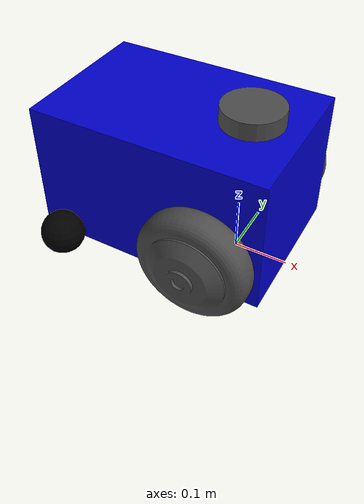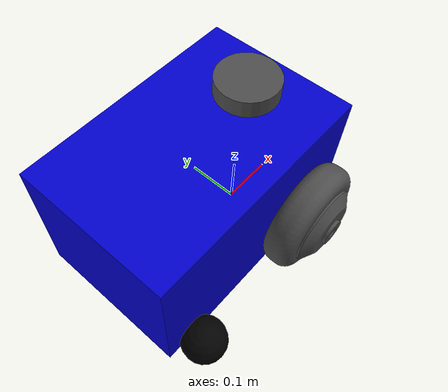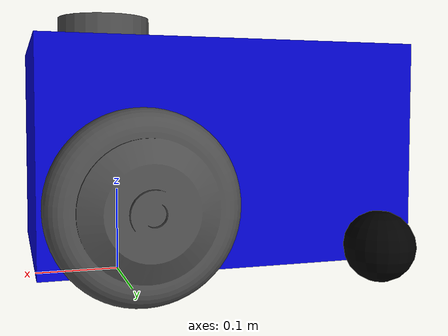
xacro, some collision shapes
<?xml version="1.0"?>

<robot xmlns:xacro="http://ros.org/wiki/xacro" name="dyno_magni" >
  <xacro:arg name="use_ros_control_for_base" default="true"/>
  <xacro:arg name="base_variant" default="default"/>
  <xacro:property name="base_variant" value="$(arg base_variant)"/>

  <xacro:include filename="../urdf/materials/materials.xacro"/>
  <xacro:include filename="../urdf/utils.urdf.xacro"/>
  <xacro:include filename="../urdf/plugins.gazebo.xacro"/>

  <!-- Set up definitions of parts of robot body -->

  <xacro:if value="${base_variant == 'default'}">
    <xacro:include filename="../urdf/base/magni_base.urdf.xacro"/>
    <xacro:include filename="../urdf/sensors/lds_lfcd.urdf.xacro"/>
    <xacro:include filename="../urdf/sensors/imu.urdf.xacro"/>

    <!-- Use macros to define the actual robot -->
    <base/>

    <!-- Laser Scanner -->
    <lds_lfcd name="base_scan" x_offset="0" y_offset="0" z_offset="0.2" yaw_offset="0" parent="base_link"/>

    <!-- Imu -->
    <imu x_offset="0" y_offset="0" z_offset="0"/>
  </xacro:if>

  <xacro:if value="${base_variant == 'sign'}">
    <xacro:include filename="../urdf/base/magni_sign_base.urdf.xacro"/>
    <xacro:include filename="../urdf/sensors/sick_tim.urdf.xacro"/>
    <xacro:include filename="../urdf/sensors/rplidar_a2.urdf.xacro"/>
    <!-- Use macros to define the actual robot -->
    <base/>

    <joint name="base_scan_mount_joint" type="fixed">
      <origin xyz="0.0725 0 1.85" rpy="0 0 0"/>
      <child link="base_scan_mount_link"/>
      <parent link="sign_pole_link"/>
    </joint>

    <sick_tim571 name="base_scan" ros_topic="scan"/>

    <rplidar_a2 name="obstacle_scan" x_offset="0.06" y_offset="0" z_offset="0.11" yaw_offset="0" parent="base_link"/>
  </xacro:if>

</robot>

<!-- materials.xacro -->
<robot>
  <material name="black">
      <color rgba="0.0 0.0 0.0 1.0"/>
  </material>

  <material name="dark">
    <color rgba="0.3 0.3 0.3 1.0"/>
  </material>
  <material name="light_black">
    <color rgba="0.4 0.4 0.4 1.0"/>
  </material>

  <material name="blue">
    <color rgba="0.0 0.0 0.8 1.0"/>
  </material>

  <material name="light_blue">
    <color rgba="0.3 0.3 0.8 1.0"/>
  </material>

  <material name="green">
    <color rgba="0.0 0.8 0.0 1.0"/>
  </material>

  <material name="grey">
    <color rgba="0.5 0.5 0.5 1.0"/>
  </material>

  <material name="orange">
    <color rgba="${255/255} ${108/255} ${10/255} 1.0"/>
  </material>

  <material name="brown">
    <color rgba="${222/255} ${207/255} ${195/255} 1.0"/>
  </material>

  <material name="red">
    <color rgba="0.8 0.0 0.0 1.0"/>
  </material>

  <material name="white">
    <color rgba="1.0 1.0 1.0 1.0"/>
  </material>

</robot>

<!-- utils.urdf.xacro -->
<robot xmlns:xacro="http://ros.org/wiki/xacro">

  <!-- Constants -->
  <xacro:property name="M_PI" value="3.1415926535897931"/>

  <!-- Inertia -->
  <xacro:macro name="cylinder_inertia" params="m r h">
    <inertia ixx="${m*(3*r*r+h*h)/12}" ixy="0" ixz="0" iyy="${m*(3*r*r+h*h)/12}" iyz="0" izz="${m*r*r/2}"/>
  </xacro:macro>

  <xacro:macro name="box_inertia" params="m x y z">
    <inertia ixx="${m*(y*y+z*z)/12}" ixy="0" ixz="0" iyy="${m*(z*z+x*x)/12}" iyz="0" izz="${m*(x*x+y*y)/12}"/>
  </xacro:macro>

  <xacro:macro name="simple_transmission" params="name interface" >
    <transmission name="${name}_trans">
      <type>transmission_interface/SimpleTransmission</type>
      <joint name="${name}">
        <hardwareInterface>hardware_interface/${interface}</hardwareInterface>
      </joint>
      <actuator name="${name}_motor">
        <mechanicalReduction>10</mechanicalReduction>
        <hardwareInterface>hardware_interface/${interface}</hardwareInterface>
      </actuator>
    </transmission>
  </xacro:macro>
</robot>

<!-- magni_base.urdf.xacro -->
<!-- Dyno Magni base -->

<robot xmlns:xacro="http://ros.org/wiki/xacro">

  <xacro:include filename="magni_base.gazebo.xacro"/>

  <xacro:include filename="../wheels/magni/drive_wheel.urdf.xacro"/>
  <xacro:include filename="../wheels/magni/caster.urdf.xacro"/>

  <!-- Drive wheel characteristics -->
  <xacro:property name="wheel_radius"     value="0.1"/>
  <xacro:property name="wheel_width"      value="0.05"/>
  <xacro:property name="wheel_separation" value="0.33"/>
  <xacro:property name="wheel_torque"     value="6.0"/>
  <xacro:property name="wheel_velocity"   value="1.0"/>

  <!-- Caster characteristics -->
  <xacro:property name="caster_radius" value="0.04"/>
  <xacro:property name="caster_ground_offset" value="0.005"/>

  <!-- Base -->
  <xacro:macro name="base">
    <link name="base_link">
      <visual>
        <origin xyz="-0.11 0 0.05" rpy="0 0 0"/>
        <geometry>
          <box size="${wheel_separation*1.3} ${wheel_separation-wheel_width} 0.25"/>
        </geometry>
        <material name="blue"/>
      </visual>

      <collision>
        <origin xyz="-0.11 0 0.05" rpy="0 0 0"/>
        <geometry>
          <box size="${wheel_separation*1.3} ${wheel_separation-wheel_width} 0.25"/>
        </geometry>
        <material name="orange"/>
      </collision>

      <!-- TODO: update according to real base properties -->2
      <inertial>
        <origin xyz="-0.15 0 0" rpy="0 0 0"/>
        <mass value="15.0"/>
        <inertia ixx="0.465408937" ixy="0.002160024" ixz="-0.001760255"
                 iyy="0.483193291" iyz="-0.000655952"
                 izz="0.550939703"/>
      </inertial>
    </link>

    <!-- Base footprint -->
    <link name="base_footprint"/>

    <joint name="base_footprint_joint" type="fixed">
      <origin xyz="0 0 ${wheel_radius}" rpy="0 0 0"/>
      <parent link="base_footprint"/>
      <child link="base_link"/>
    </joint>

    <!-- Macros -->
    <drive_wheel name="wheel_right" radius="${wheel_radius}" width="${wheel_width}" separation="${wheel_separation}" reflect="1.0" parent="base_link"/>
    <drive_wheel name="wheel_left" radius="${wheel_radius}" width="${wheel_width}" separation="${wheel_separation}" reflect="-1.0" parent="base_link"/>

    <caster name="right_caster" radius="${caster_radius}" x_offset="-0.27" y_offset="${wheel_separation/2}" z_offset="${caster_ground_offset - (wheel_radius - caster_radius)}" parent="base_link"/>
    <caster name="left_caster" radius="${caster_radius}" x_offset="-0.27" y_offset="${-wheel_separation/2}" z_offset="${caster_ground_offset - (wheel_radius - caster_radius)}" parent="base_link"/>

    <!-- Gazebo extentions -->
    <magni_base_gazebo/>
  </xacro:macro>

</robot>

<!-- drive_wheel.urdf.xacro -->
<robot xmlns:xacro="http://ros.org/wiki/xacro">

  <xacro:include filename="drive_wheel.gazebo.xacro"/>
  <xacro:include filename="drive_wheel.transmission.xacro"/>

  <xacro:macro name="drive_wheel" params="name radius width separation reflect parent">
    <link name="${name}_link">
      <visual>
        <origin xyz="0 0 0" rpy="0 0 0"/>
        <geometry>
          <mesh filename="package://dyno_description/meshes/wheels/magni_wheel.dae" scale="0.0118 0.0118 ${-0.0118 * reflect}"/>
        </geometry>
      </visual>

      <collision>
        <origin xyz="0 0 0" rpy="0 0 0"/>
        <geometry>
          <cylinder radius="${radius}" length="${width}"/>
        </geometry>
        <material name="orange"/>
      </collision>

      <inertial>
        <origin xyz="0 0 ${-0.00207 * reflect}" rpy="0 0 0"/>
        <!-- TODO: update according to real wheel properties -->
        <mass value="1.0"/>
        <inertia ixx="0.00499743171" ixy="${ 0.00000004464 * reflect}" ixz="-0.00000002245"
                 iyy="0.00499741733" iyz="${-0.00000000164 * reflect}"
                 izz="0.00839239692"/>
      </inertial>

    </link>

    <joint name="${name}_joint" type="continuous">
      <origin xyz="0 ${-separation / 2 * reflect} 0" rpy="${-pi/2} 0 0"/>
      <parent link="${parent}"/>
      <child link="${name}_link"/>
      <axis xyz="0 0 1"/>
      <limit effort="10000" velocity="10000"/>
    </joint>

    <!-- Transmission -->

    <xacro:if value="$(arg use_ros_control_for_base)">
      <wheel_transmission name="${name}"/>
    </xacro:if>

    <!-- Gazebo extensions -->
    <drive_wheel_gazebo name="${name}"/>

  </xacro:macro>
</robot>

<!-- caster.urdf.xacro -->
<robot xmlns:xacro="http://ros.org/wiki/xacro">

  <xacro:include filename="caster.gazebo.xacro"/>

  <xacro:macro name="caster" params="name radius x_offset z_offset y_offset parent">
    <link name="${name}_link">
      <visual>
        <origin xyz="0 0 0" rpy="0 0 0"/>
        <geometry>
          <sphere radius="${radius}"/>
        </geometry>
        <material name="black"/>
      </visual>

      <collision>
        <origin xyz="0 0 0" rpy="0 0 0"/>
        <geometry>
          <sphere radius="${radius}"/>
        </geometry>
        <material name="orange"/>
      </collision>

      <inertial>
        <origin xyz="${x_offset} 0 0" rpy="0 0 0"/>
        <mass value="0.2"/>
        <inertia ixx="0.001" ixy="0" ixz="0"
                 iyy="0.001" iyz="0"
                 izz="0.001"/>
      </inertial>

    </link>

    <joint name="${name}_joint" type="fixed">
      <origin xyz="${x_offset} ${y_offset} ${z_offset}" rpy="0 0 0"/>
      <parent link="${parent}"/>
      <child link="${name}_link"/>
    </joint>

    <!-- Gazebo extensions -->
    <caster_gazebo name="${name}"/>

  </xacro:macro>
</robot>

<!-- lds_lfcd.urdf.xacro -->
<robot xmlns:xacro="http://ros.org/wiki/xacro">
  <xacro:include filename="lds_lfcd.gazebo.xacro"/>

  <xacro:macro name="lds_lfcd" params="name x_offset y_offset z_offset yaw_offset parent">
    <joint name="${name}_joint" type="fixed">
      <parent link="${parent}"/>
      <child link="${name}_link"/>
      <origin xyz="${x_offset} ${y_offset} ${z_offset}" rpy="0 0 ${yaw_offset}"/>
    </joint>

    <link name="${name}_link">
      <visual>
        <origin xyz="0 0 0.0" rpy="0 0 0"/>
        <geometry>
          <mesh filename="package://dyno_description/meshes/sensors/lds.stl" scale="0.001 0.001 0.001"/>
        </geometry>
        <material name="dark"/>
      </visual>

      <collision>
        <origin xyz="0.015 0 -0.0065" rpy="0 0 0"/>
        <geometry>
          <cylinder length="0.0315" radius="0.055"/>
        </geometry>
      </collision>

      <inertial>
        <mass value="0.114" />
        <origin xyz="0 0 0" />
        <inertia ixx="0.001" ixy="0.0" ixz="0.0"
                 iyy="0.001" iyz="0.0"
                 izz="0.001" />
      </inertial>
    </link>

    <lds_lfcd_gazebo name="${name}"/>
  </xacro:macro>

</robot>

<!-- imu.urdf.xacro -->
<robot xmlns:xacro="http://ros.org/wiki/xacro">

  <xacro:include filename="imu.gazebo.xacro"/>
  <xacro:macro name="imu" params="x_offset y_offset z_offset">

    <link name="imu_link">
      <visual>
        <origin xyz="0 0 0.0" rpy="0 0 0"/>
        <geometry>
          <cylinder length="0.001" radius="0.001"/>
        </geometry>
      </visual>
      <inertial>
        <origin xyz="0 0 0" rpy="0 0 0"/>
        <mass value="0.001"/>
        <box_inertia m="0.001" x="0.01" y="0.01" z="0.002"/>
      </inertial>
    </link>

    <joint name="imu_joint" type="fixed">
      <origin xyz="${x_offset} ${y_offset} ${z_offset}" rpy="0 0 0"/>
      <parent link="base_link"/>
      <child link="imu_link"/>
    </joint>

  </xacro:macro>

</robot>
